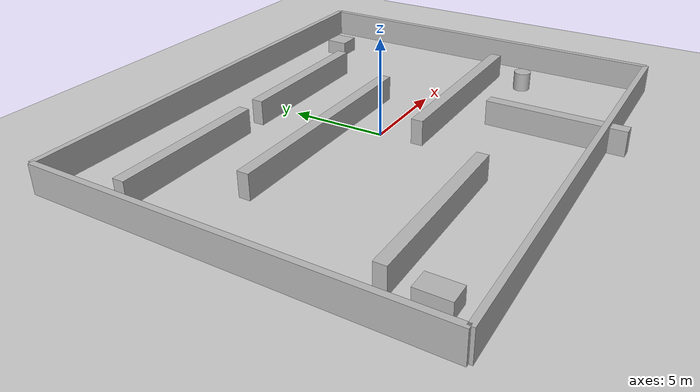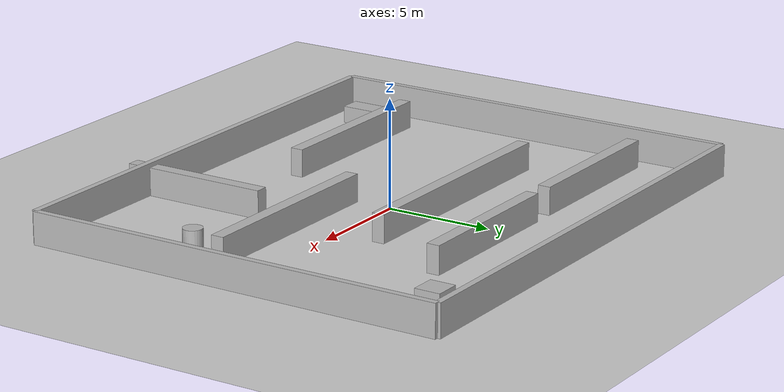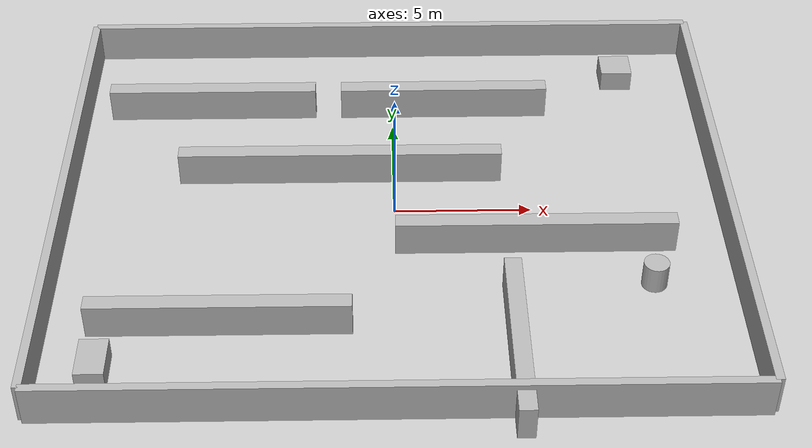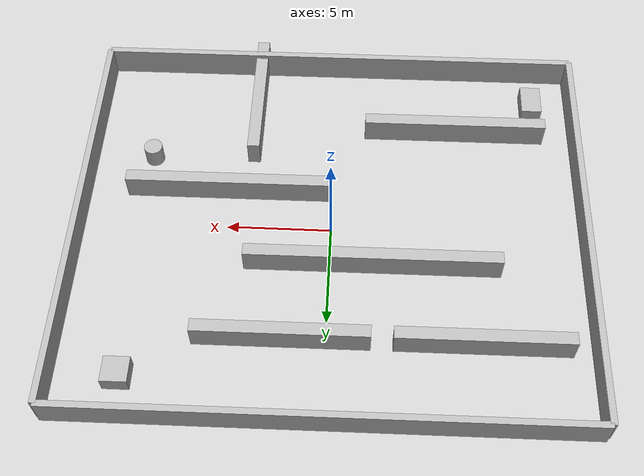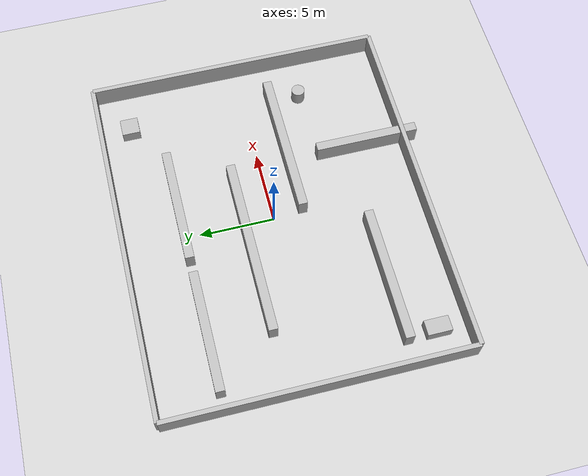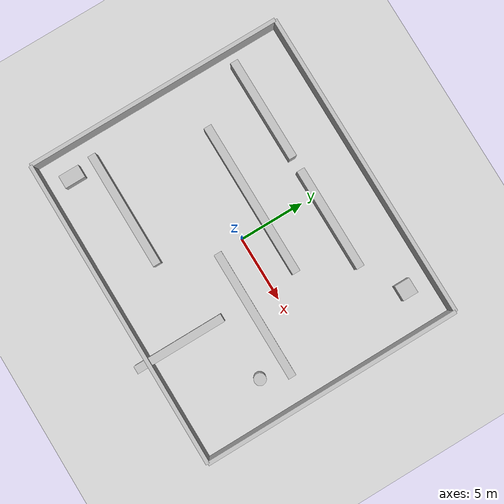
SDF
<?xml version="1.0" ?>
<sdf version="1.6">
  <world name="warehouse_grid">
    <include><uri>model://ground_plane</uri></include>
    <include><uri>model://sun</uri></include>

    <model name="boundary">
      <static>true</static>
      <link name="walls">
        <collision name="n"><pose>0 10 0.75 0 0 0</pose><geometry><box><size>24 0.3 1.5</size></box></geometry></collision>
        <collision name="s"><pose>0 -10 0.75 0 0 0</pose><geometry><box><size>24 0.3 1.5</size></box></geometry></collision>
        <collision name="e"><pose>12 0 0.75 0 0 0</pose><geometry><box><size>0.3 20 1.5</size></box></geometry></collision>
        <collision name="w"><pose>-12 0 0.75 0 0 0</pose><geometry><box><size>0.3 20 1.5</size></box></geometry></collision>
        <visual name="n_v"><pose>0 10 0.75 0 0 0</pose><geometry><box><size>24 0.3 1.5</size></box></geometry></visual>
        <visual name="s_v"><pose>0 -10 0.75 0 0 0</pose><geometry><box><size>24 0.3 1.5</size></box></geometry></visual>
        <visual name="e_v"><pose>12 0 0.75 0 0 0</pose><geometry><box><size>0.3 20 1.5</size></box></geometry></visual>
        <visual name="w_v"><pose>-12 0 0.75 0 0 0</pose><geometry><box><size>0.3 20 1.5</size></box></geometry></visual>
      </link>
    </model>

    <model name="shelf_rows">
      <static>true</static>
      <link name="row_link">
        <collision name="r1"><pose>-7 6 0.65 0 0 0</pose><geometry><box><size>8 0.6 1.3</size></box></geometry></collision>
        <collision name="r2"><pose>2 6 0.65 0 0 0</pose><geometry><box><size>8 0.6 1.3</size></box></geometry></collision>
        <collision name="r3"><pose>-2 2 0.65 0 0 0</pose><geometry><box><size>12 0.6 1.3</size></box></geometry></collision>
        <collision name="r4"><pose>5 -2 0.65 0 0 0</pose><geometry><box><size>10 0.6 1.3</size></box></geometry></collision>
        <collision name="r5"><pose>-6 -6 0.65 0 0 0</pose><geometry><box><size>9 0.6 1.3</size></box></geometry></collision>
        <collision name="r6"><pose>4 -7.5 0.65 0 0 1.57</pose><geometry><box><size>7 0.6 1.3</size></box></geometry></collision>

        <visual name="r1v"><pose>-7 6 0.65 0 0 0</pose><geometry><box><size>8 0.6 1.3</size></box></geometry></visual>
        <visual name="r2v"><pose>2 6 0.65 0 0 0</pose><geometry><box><size>8 0.6 1.3</size></box></geometry></visual>
        <visual name="r3v"><pose>-2 2 0.65 0 0 0</pose><geometry><box><size>12 0.6 1.3</size></box></geometry></visual>
        <visual name="r4v"><pose>5 -2 0.65 0 0 0</pose><geometry><box><size>10 0.6 1.3</size></box></geometry></visual>
        <visual name="r5v"><pose>-6 -6 0.65 0 0 0</pose><geometry><box><size>9 0.6 1.3</size></box></geometry></visual>
        <visual name="r6v"><pose>4 -7.5 0.65 0 0 1.57</pose><geometry><box><size>7 0.6 1.3</size></box></geometry></visual>
      </link>
    </model>

    <model name="forklift_blocks">
      <static>true</static>
      <link name="blocks">
        <collision name="b1"><pose>9 8 0.4 0 0 0</pose><geometry><box><size>1.2 1.2 0.8</size></box></geometry></collision>
        <collision name="b2"><pose>-10 -8 0.4 0 0 0</pose><geometry><box><size>1.0 1.6 0.8</size></box></geometry></collision>
        <collision name="b3"><pose>9 -4 0.5 0 0 0</pose><geometry><cylinder><radius>0.45</radius><length>1.0</length></cylinder></geometry></collision>
        <visual name="b1v"><pose>9 8 0.4 0 0 0</pose><geometry><box><size>1.2 1.2 0.8</size></box></geometry></visual>
        <visual name="b2v"><pose>-10 -8 0.4 0 0 0</pose><geometry><box><size>1.0 1.6 0.8</size></box></geometry></visual>
        <visual name="b3v"><pose>9 -4 0.5 0 0 0</pose><geometry><cylinder><radius>0.45</radius><length>1.0</length></cylinder></geometry></visual>
      </link>
    </model>
  </world>
</sdf>
